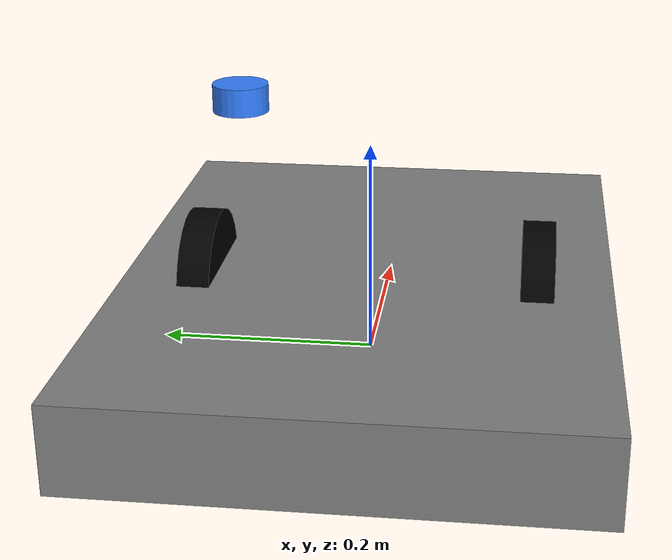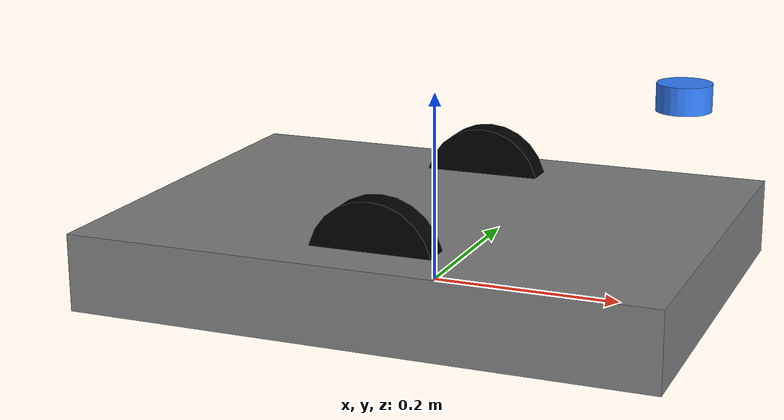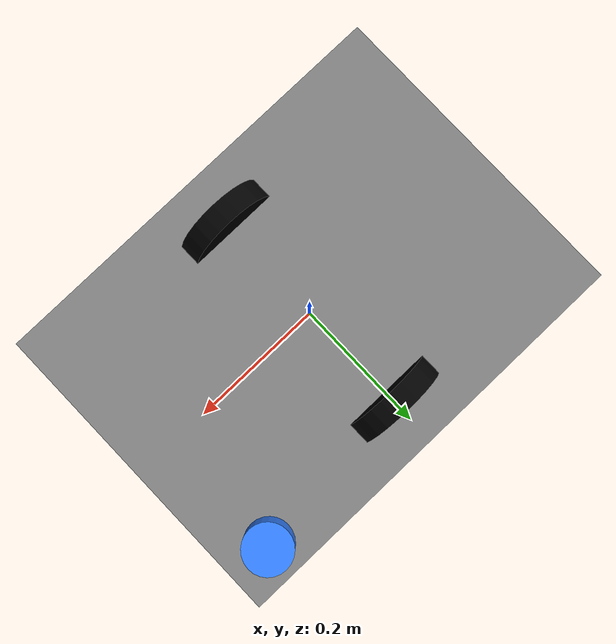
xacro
<?xml version="1.0"?>
<robot name="amr_robot" xmlns:xacro="http://www.ros.org/wiki/xacro">

  <!--      INPUT PARAMETERS   -->
  <!-- default values (can be overridden from robot_params.yaml) -->
  <xacro:property name="base_length" value="0.60"/>
  <xacro:property name="base_width"  value="0.45"/>
  <xacro:property name="base_height" value="0.08"/>

  <xacro:property name="wheel_radius"     value="0.065"/>
  <xacro:property name="wheel_width"      value="0.03"/>
  <xacro:property name="wheel_separation" value="0.3118"/>

  <xacro:property name="laser_x" value="0.22"/>
  <xacro:property name="laser_y" value="0.165"/>
  <xacro:property name="laser_z" value="0.165"/>

  <!--         BASE LINK       -->
  <link name="base_link">
    <visual>
      <geometry>
        <box size="${base_length} ${base_width} ${base_height}"/>
      </geometry>
      <origin xyz="0 0 ${base_height/2}" rpy="0 0 0"/>
      <material name="gray">
        <color rgba="0.5 0.5 0.5 1"/>
      </material>
    </visual>

    <collision>
      <geometry>
        <box size="${base_length} ${base_width} ${base_height}"/>
      </geometry>
      <origin xyz="0 0 ${base_height/2}" rpy="0 0 0"/>
    </collision>
  </link>

  <!--        WHEELS           -->
  <link name="left_wheel">
    <visual>
      <geometry>
        <cylinder radius="${wheel_radius}" length="${wheel_width}"/>
      </geometry>
      <origin xyz="0 0 0" rpy="1.57 0 0"/>
      <material name="black"><color rgba="0 0 0 1"/></material>
    </visual>
  </link>

  <link name="right_wheel">
    <visual>
      <geometry>
        <cylinder radius="${wheel_radius}" length="${wheel_width}"/>
      </geometry>
      <origin xyz="0 0 0" rpy="1.57 0 0"/>
      <material name="black"><color rgba="0 0 0 1"/></material>
    </visual>
  </link>

  <!-- Wheel joints -->
  <joint name="left_wheel_joint" type="continuous">
    <parent link="base_link"/>
    <child link="left_wheel"/>
    <origin xyz="0 ${wheel_separation/2} ${wheel_radius}" rpy="0 1.57 0"/>
    <axis xyz="0 1 0"/>
  </joint>

  <joint name="right_wheel_joint" type="continuous">
    <parent link="base_link"/>
    <child link="right_wheel"/>
    <origin xyz="0 -${wheel_separation/2} ${wheel_radius}" rpy="0 1.57 0"/>
    <axis xyz="0 1 0"/>
  </joint>

  <!--          LIDAR          -->
  <link name="laser">
    <visual>
      <geometry>
        <cylinder radius="0.03" length="0.03"/>
      </geometry>
      <origin xyz="0 0 0.015"/>
      <material name="blue">
        <color rgba="0.2 0.5 1.0 1"/>
      </material>
    </visual>
  </link>

  <joint name="laser_joint" type="fixed">
    <parent link="base_link"/>
    <child link="laser"/>
    <origin xyz="${laser_x} ${laser_y} ${laser_z}" rpy="0 0 3.14159"/>
  </joint>

</robot>
